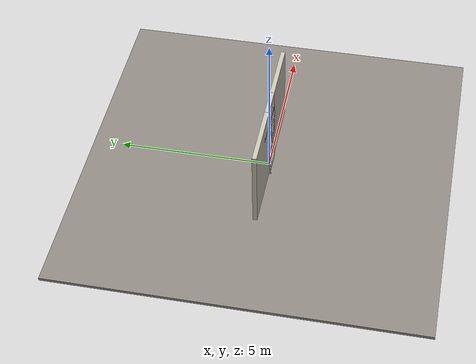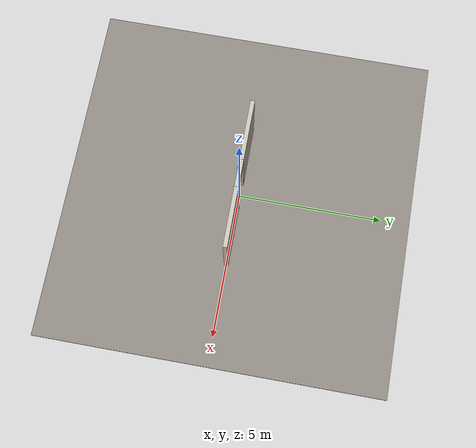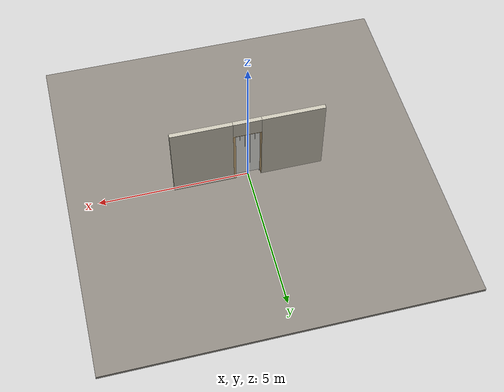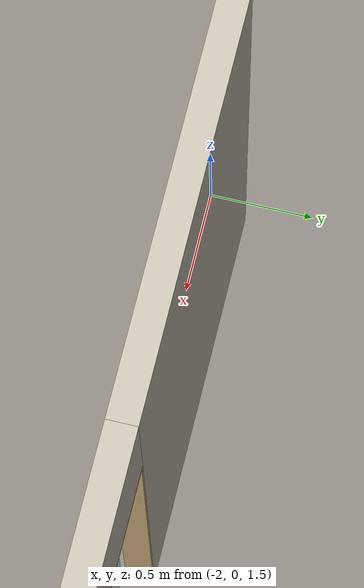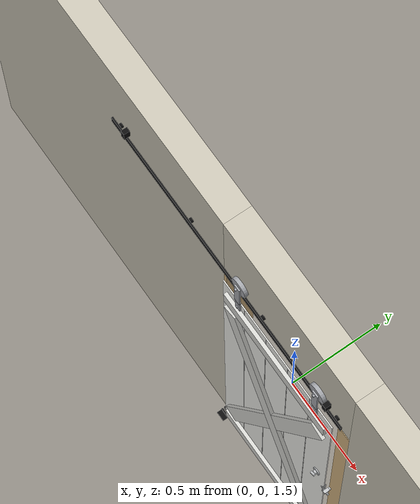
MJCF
<?xml version="1.0" ?>
<mujoco model="db0468_sliding_single_full">
  <compiler angle="radian" meshdir="../../hardware" texturedir="../../textures" autolimits="true" inertiafromgeom="false"/>
  <option timestep="0.002" integrator="implicitfast" cone="elliptic" impratio="10" noslip_iterations="3">
    <flag multiccd="enable"/>
  </option>
  <size memory="16M"/>
  <default>
    <geom condim="4" solref="0.005 1" solimp="0.95 0.99 0.001"/>
    <joint solreflimit="0.005 1" solimplimit="0.95 0.99 0.001"/>
    <tendon solreflimit="0.005 1"/>
    <equality solref="0.002 1"/>
  </default>
  <visual>
    <headlight ambient="0.4 0.4 0.4" diffuse="0.7 0.7 0.7" specular="0.2 0.2 0.2"/>
    <quality shadowsize="4096"/>
    <map znear="0.01" zfar="60"/>
  </visual>
  <asset>
    <mesh name="thumbturn_eb5c9899a3" file="thumbturn_eb5c9899a3.obj"/>
    <material name="mat_floor" rgba="0.55 0.53 0.5 1" specular="0.2" shininess="0.15" reflectance="0"/>
    <material name="mat_wall" rgba="0.78 0.76 0.7 1" specular="0.2" shininess="0.1" reflectance="0"/>
    <material name="mat_frame" rgba="0.82 0.7 0.5 1" specular="0.2" shininess="0.45" reflectance="0"/>
    <material name="mat_track" rgba="0.05 0.05 0.05 1" specular="0.38" shininess="0.3" reflectance="0.12"/>
    <material name="mat_leaf" rgba="0.93 0.93 0.91 1" specular="0.23" shininess="0.54" reflectance="0.02"/>
    <material name="mat_leaf_brace" rgba="0.837 0.837 0.819 1" specular="0.2" shininess="0.2" reflectance="0"/>
    <material name="mat_roller" rgba="0.65 0.66 0.68 1" specular="0.74" shininess="0.5" reflectance="0.36"/>
    <material name="mat_hook" rgba="0.75 0.76 0.77 1" specular="0.8" shininess="0.65" reflectance="0.4"/>
    <texture name="skybox" type="skybox" builtin="gradient" rgb1="0.6 0.7 0.85" rgb2="0.9 0.92 0.95" width="256" height="256"/>
  </asset>
  <worldbody>
    <light name="sun" pos="1.5 -2.5 4" dir="-0.3 0.5 -0.8" directional="true" diffuse="0.8 0.8 0.8" specular="0.3 0.3 0.3" castshadow="true"/>
    <light name="fill" pos="-1.5 2.5 3" dir="0.3 -0.5 -0.7" directional="true" diffuse="0.35 0.35 0.4" castshadow="false"/>
    <camera name="robot_view" pos="0 -2.644375 1.817425" xyaxes="1 0 0 0 0.26963 0.962964" fovy="52"/>
    <camera name="far_view" pos="0 2.644375 1.817425" xyaxes="-1 0 0 0 -0.26963 0.962964" fovy="52"/>
    <camera name="iso" pos="2.009725 -2.221275 2.240525" xyaxes="0.741536 0.670913 0 -0.242917 0.268487 0.932151" fovy="46"/>
    <camera name="detail_handle" pos="0.5265 -0.9285 1.5" xyaxes="0.97561 0.219512 0 -0.070934 0.315262 0.94635" fovy="38"/>
    <geom name="floor" type="box" size="6 6 0.05" pos="0 0 -0.05" material="mat_floor" group="0" contype="1" conaffinity="1" friction="0.8 0.005 0.0001" density="2400"/>
    <geom name="wall_left" type="box" size="1.03225 0.0725 1.377" pos="-1.46775 0 1.377" material="mat_wall" group="0" contype="1" conaffinity="1" friction="0.6 0.005 0.0001" density="800"/>
    <geom name="wall_right" type="box" size="1.00225 0.0725 1.377" pos="1.49775 0 1.377" material="mat_wall" group="0" contype="1" conaffinity="1" friction="0.6 0.005 0.0001" density="800"/>
    <geom name="wall_header" type="box" size="0.4655 0.0725 0.2905" pos="0.03 0 2.4635" material="mat_wall" group="0" contype="1" conaffinity="1" friction="0.6 0.005 0.0001" density="800"/>
    <geom name="jamb_l" type="box" size="0.0095 0.0725 1.077" pos="-0.426 0 1.077" material="mat_frame" group="0" contype="1" conaffinity="1" friction="0.6 0.005 0.0001" density="300"/>
    <geom name="jamb_head" type="box" size="0.4355 0.0725 0.0095" pos="0 0 2.1635" material="mat_frame" group="0" contype="1" conaffinity="1" friction="0.6 0.005 0.0001" density="300"/>
    <geom name="flat_track" type="box" size="0.863 0.004 0.02" pos="-0.4065 -0.0925 2.274" material="mat_track" group="0" contype="1" conaffinity="1" friction="0.6 0.005 0.0001" density="7850"/>
    <geom name="track_standoff_0" type="cylinder" size="0.012 0.008" pos="-1.2195 -0.0805 2.274" quat="0.707107 -0.707107 0 0" material="mat_track" group="1" contype="0" conaffinity="0" density="7850"/>
    <geom name="track_standoff_1" type="cylinder" size="0.012 0.008" pos="-0.6775 -0.0805 2.274" quat="0.707107 -0.707107 0 0" material="mat_track" group="1" contype="0" conaffinity="0" density="7850"/>
    <geom name="track_standoff_2" type="cylinder" size="0.012 0.008" pos="-0.1355 -0.0805 2.274" quat="0.707107 -0.707107 0 0" material="mat_track" group="1" contype="0" conaffinity="0" density="7850"/>
    <geom name="track_standoff_3" type="cylinder" size="0.012 0.008" pos="0.4065 -0.0805 2.274" quat="0.707107 -0.707107 0 0" material="mat_track" group="1" contype="0" conaffinity="0" density="7850"/>
    <geom name="leaf_track_stop_l" type="box" size="0.012 0.016 0.027" pos="-1.1615 -0.0925 2.319" material="mat_track" group="0" contype="1" conaffinity="1" friction="0.6 0.005 0.0001" density="7850"/>
    <geom name="leaf_track_stop_r" type="box" size="0.012 0.016 0.027" pos="0.3485 -0.0925 2.319" material="mat_track" group="0" contype="1" conaffinity="1" friction="0.6 0.005 0.0001" density="7850"/>
    <geom name="leaf_hook_keeper" type="box" size="0.008 0.015 0.006" pos="0.4245 -0.0955 1.08" material="mat_hook" group="0" contype="1" conaffinity="1" friction="0.6 0.005 0.0001" density="7900"/>
    <geom name="jamb_latch_0" type="box" size="0.0395 0.0725 1.077" pos="0.456 0 1.077" material="mat_frame" group="0" contype="1" conaffinity="1" friction="0.6 0.005 0.0001" density="300"/>
    <geom name="floor_guide_n" type="box" size="0.028 0.004 0.009" pos="-0.4065 -0.1035 0.009" material="mat_track" group="0" contype="1" conaffinity="1" friction="0.6 0.005 0.0001" density="7850"/>
    <geom name="floor_guide_n_foot" type="box" size="0.028 0.018 0.002" pos="-0.4065 -0.1175 0.002" material="mat_track" group="0" contype="1" conaffinity="1" friction="0.6 0.005 0.0001" density="7850"/>
    <geom name="floor_guide_p" type="box" size="0.028 0.004 0.009" pos="-0.4065 -0.0875 0.009" material="mat_track" group="0" contype="1" conaffinity="1" friction="0.6 0.005 0.0001" density="7850"/>
    <geom name="floor_guide_p_foot" type="box" size="0.028 0.018 0.002" pos="-0.4065 -0.0735 0.002" material="mat_track" group="0" contype="1" conaffinity="1" friction="0.6 0.005 0.0001" density="7850"/>
    <geom name="leaf_hook_keeper_bracket" type="box" size="0.0064 0.0045 0.005" pos="0.4245 -0.0765 1.08" material="mat_hook" group="1" contype="0" conaffinity="0" density="7850"/>
    <site name="approach_point" pos="0 -1.5 0" quat="1 0 0 0" size="0.05" rgba="0.2 0.9 0.2 0.5" group="4"/>
    <site name="goal_point" pos="0 1.5 0" quat="1 0 0 0" size="0.05" rgba="0.2 0.9 0.2 0.5" group="4"/>
    <site name="door_plane_center" pos="0 0 1.077" quat="1 0 0 0" size="0.02" rgba="0.2 0.9 0.2 0.5" group="4"/>
    <body name="leaf" pos="0 -0.0955 0">
      <inertial pos="0.000089 -0.000091 1.136892" mass="82.564774" quat="0.500045 -0.499948 -0.499955 -0.500052" diaginertia="4.658828414 35.342146653 39.999984136"/>
      <joint name="leaf_slide" type="slide" axis="-1 0 0" limited="true" range="0 0.813" damping="6.140788" frictionloss="21.115777" armature="0.5"/>
      <geom name="leaf_slab" type="box" size="0.4065 0.003 1.067" pos="0 0 1.079" material="mat_leaf" group="0" contype="1" conaffinity="1" friction="0.45 0.005 0.0001" density="1"/>
      <geom name="leaf_plank_gap_1" type="box" size="0.002 0.004 1.057" pos="-0.2439 0 1.079" material="mat_leaf_brace" group="1" contype="0" conaffinity="0" density="1"/>
      <geom name="leaf_plank_gap_2" type="box" size="0.002 0.004 1.057" pos="-0.0813 0 1.079" material="mat_leaf_brace" group="1" contype="0" conaffinity="0" density="1"/>
      <geom name="leaf_plank_gap_3" type="box" size="0.002 0.004 1.057" pos="0.0813 0 1.079" material="mat_leaf_brace" group="1" contype="0" conaffinity="0" density="1"/>
      <geom name="leaf_plank_gap_4" type="box" size="0.002 0.004 1.057" pos="0.2439 0 1.079" material="mat_leaf_brace" group="1" contype="0" conaffinity="0" density="1"/>
      <geom name="leaf_batten_13" type="box" size="0.3765 0.01 0.045" pos="0 -0.013 0.132" material="mat_leaf_brace" group="1" contype="0" conaffinity="0" density="1"/>
      <geom name="leaf_batten_202" type="box" size="0.3765 0.01 0.045" pos="0 -0.013 2.026" material="mat_leaf_brace" group="1" contype="0" conaffinity="0" density="1"/>
      <geom name="leaf_brace_z" type="box" size="0.900602 0.01 0.045" pos="0 -0.013 1.079" quat="0.827986 0 -0.560749 0" material="mat_leaf_brace" group="1" contype="0" conaffinity="0" density="1"/>
      <geom name="leaf_brace_x" type="box" size="0.900602 0.01 0.045" pos="0 -0.013 1.079" quat="0.827986 0 0.560749 0" material="mat_leaf_brace" group="1" contype="0" conaffinity="0" density="1"/>
      <geom name="leaf_hanger_wheel_0" type="cylinder" size="0.05 0.01" pos="-0.2865 0.003 2.344" quat="0.707107 -0.707107 0 0" material="mat_roller" group="1" contype="0" conaffinity="0" density="7850"/>
      <geom name="leaf_hanger_mount_0" type="box" size="0.018 0.004 0.0725" pos="-0.2865 -0.007 2.0985" material="mat_roller" group="1" contype="0" conaffinity="0" density="7850"/>
      <geom name="leaf_hanger_strap_0" type="box" size="0.018 0.004 0.0925" pos="-0.2865 -0.011 2.2635" material="mat_roller" group="1" contype="0" conaffinity="0" density="7850"/>
      <geom name="leaf_hanger_bend_0" type="box" size="0.018 0.006 0.004" pos="-0.2865 -0.009 2.171" material="mat_roller" group="1" contype="0" conaffinity="0" density="7850"/>
      <geom name="leaf_hanger_axle_0" type="cylinder" size="0.006 0.021" pos="-0.2865 -0.004 2.344" quat="0.707107 -0.707107 0 0" material="mat_roller" group="1" contype="0" conaffinity="0" density="7850"/>
      <geom name="leaf_hanger_bolt_0_90" type="cylinder" size="0.007 0.004" pos="-0.2865 -0.013 2.056" quat="0.707107 -0.707107 0 0" material="mat_roller" group="1" contype="0" conaffinity="0" density="7850"/>
      <geom name="leaf_hanger_bolt_0_45" type="cylinder" size="0.007 0.004" pos="-0.2865 -0.013 2.101" quat="0.707107 -0.707107 0 0" material="mat_roller" group="1" contype="0" conaffinity="0" density="7850"/>
      <geom name="leaf_hanger_wheel_1" type="cylinder" size="0.05 0.01" pos="0.2865 0.003 2.344" quat="0.707107 -0.707107 0 0" material="mat_roller" group="1" contype="0" conaffinity="0" density="7850"/>
      <geom name="leaf_hanger_mount_1" type="box" size="0.018 0.004 0.0725" pos="0.2865 -0.007 2.0985" material="mat_roller" group="1" contype="0" conaffinity="0" density="7850"/>
      <geom name="leaf_hanger_strap_1" type="box" size="0.018 0.004 0.0925" pos="0.2865 -0.011 2.2635" material="mat_roller" group="1" contype="0" conaffinity="0" density="7850"/>
      <geom name="leaf_hanger_bend_1" type="box" size="0.018 0.006 0.004" pos="0.2865 -0.009 2.171" material="mat_roller" group="1" contype="0" conaffinity="0" density="7850"/>
      <geom name="leaf_hanger_axle_1" type="cylinder" size="0.006 0.021" pos="0.2865 -0.004 2.344" quat="0.707107 -0.707107 0 0" material="mat_roller" group="1" contype="0" conaffinity="0" density="7850"/>
      <geom name="leaf_hanger_bolt_1_90" type="cylinder" size="0.007 0.004" pos="0.2865 -0.013 2.056" quat="0.707107 -0.707107 0 0" material="mat_roller" group="1" contype="0" conaffinity="0" density="7850"/>
      <geom name="leaf_hanger_bolt_1_45" type="cylinder" size="0.007 0.004" pos="0.2865 -0.013 2.101" quat="0.707107 -0.707107 0 0" material="mat_roller" group="1" contype="0" conaffinity="0" density="7850"/>
      <geom name="leaf_hook_faceplate" type="box" size="0.0006 0.011 0.045" pos="0.4059 0 1.08" material="mat_hook" group="1" contype="0" conaffinity="0" density="7900"/>
      <site name="leaf_edge_mid" pos="0.4065 0 1.079" quat="1 0 0 0" size="0.02" rgba="0.2 0.9 0.2 0.5" group="4"/>
      <body name="leaf_hook_thumbturn" pos="0.3465 -0.003 1.22">
        <inertial pos="0 -0.012928 0" mass="0.178946" quat="0.678504 0.199079 -0.199079 -0.678504" diaginertia="0.000026045 0.000026215 0.000032438"/>
        <joint name="leaf_hook_thumbturn_hinge" type="hinge" axis="0 1 0" limited="true" range="0 1" damping="0.05" frictionloss="0.25" armature="0.005" ref="1"/>
        <geom name="leaf_hook_tt_mesh" type="mesh" mesh="thumbturn_eb5c9899a3" pos="0 0 0" quat="0.620545 0.620545 0.339005 -0.339005" material="mat_hook" group="0" contype="1" conaffinity="1" friction="0.6 0.005 0.0001" density="7100"/>
        <geom name="leaf_hook_tt_col" type="box" size="0.006 0.012 0.016" pos="0 -0.02 0" quat="0.877583 0 0.479426 0" material="mat_hook" group="3" contype="1" conaffinity="1" rgba="0.8 0.3 0.3 0.25" friction="0.6 0.005 0.0001" density="7100"/>
        <site name="leaf_hook_tt_grip" pos="0 -0.03 0" quat="0.877583 0 0.479426 0" size="0.01" rgba="0.2 0.9 0.2 0.5" group="4"/>
      </body>
      <body name="leaf_hook" pos="0.4065 0 1.08">
        <inertial pos="0.006651 0 -0.027503" mass="0.072048" quat="-0.148813 -0.148813 0.69127 -0.69127" diaginertia="0.000005266 0.00001511 0.000019175"/>
        <joint name="leaf_hook_hinge" type="hinge" axis="0 1 0" limited="true" range="0 1" damping="0.05" frictionloss="0.1" armature="0.005" ref="1"/>
        <geom name="leaf_hook_arm" type="box" size="0.022 0.005 0.006" pos="-0.002657 0 -0.025474" quat="0.877583 0 0.479426 0" material="mat_hook" group="0" contype="1" conaffinity="1" friction="0.6 0.005 0.0001" density="7900"/>
        <geom name="leaf_hook_tip" type="box" size="0.006 0.005 0.016" pos="0.019451 0 -0.030293" quat="0.877583 0 0.479426 0" material="mat_hook" group="0" contype="1" conaffinity="1" friction="0.6 0.005 0.0001" density="7900"/>
      </body>
    </body>
  </worldbody>
  <equality>
    <joint name="leaf_hook_couple" joint1="leaf_hook_hinge" joint2="leaf_hook_thumbturn_hinge" polycoef="0 1 0 0 0" active="true"/>
  </equality>
  <sensor>
    <jointpos name="leaf_slide_pos" joint="leaf_slide"/>
    <jointvel name="leaf_slide_vel" joint="leaf_slide"/>
    <jointpos name="leaf_hook_thumbturn_hinge_pos" joint="leaf_hook_thumbturn_hinge"/>
    <jointvel name="leaf_hook_thumbturn_hinge_vel" joint="leaf_hook_thumbturn_hinge"/>
    <jointpos name="leaf_hook_hinge_pos" joint="leaf_hook_hinge"/>
    <jointvel name="leaf_hook_hinge_vel" joint="leaf_hook_hinge"/>
  </sensor>
</mujoco>
